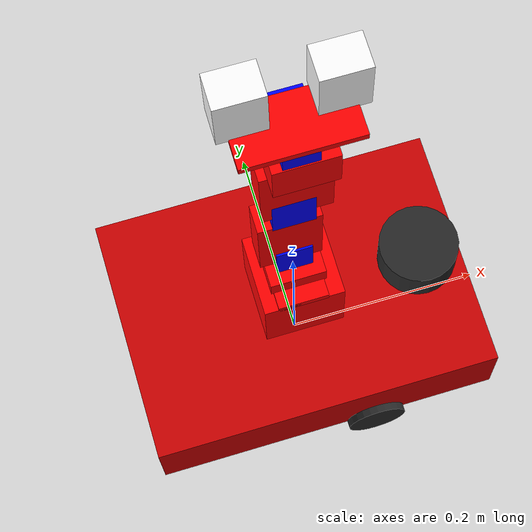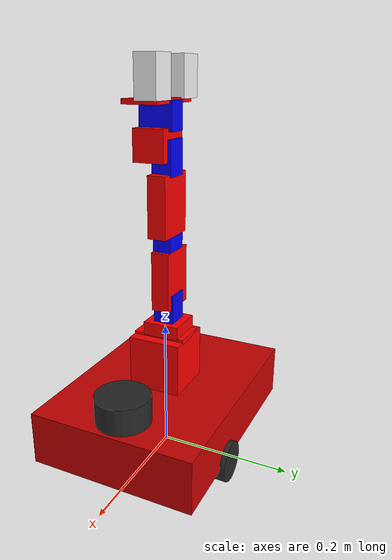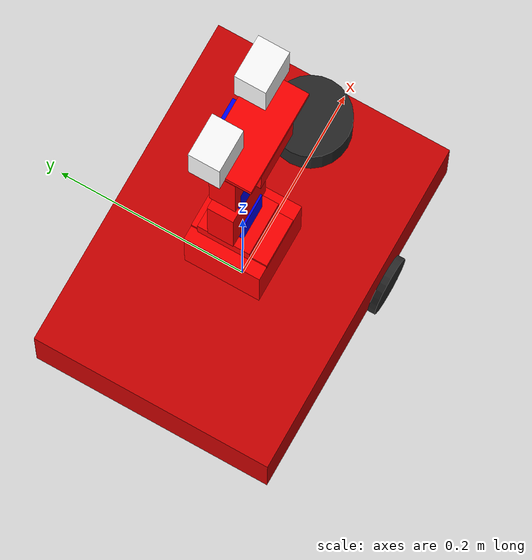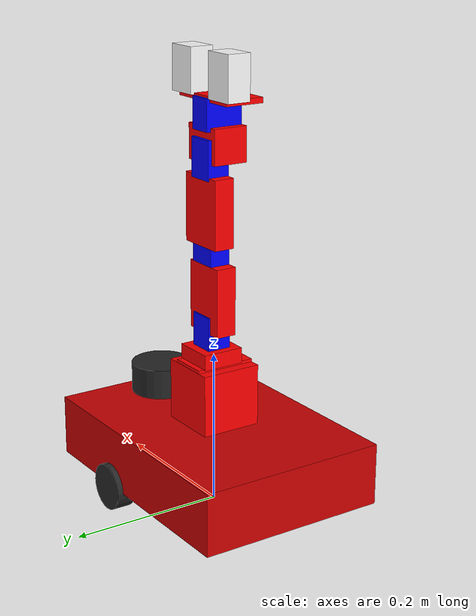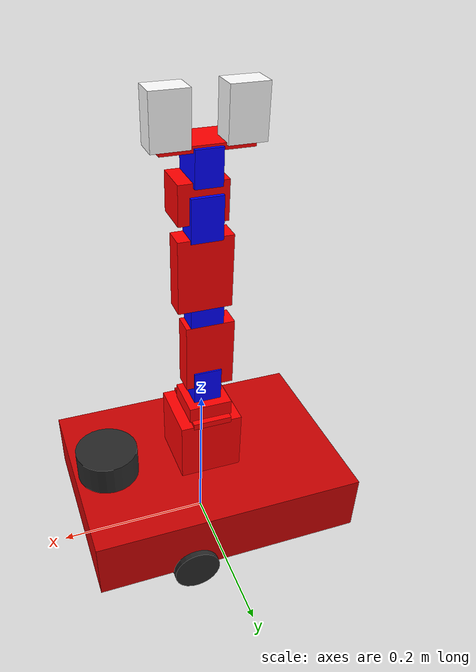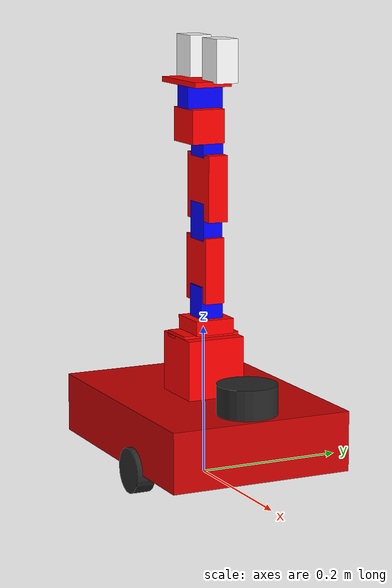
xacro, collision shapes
<?xml version="1.0"?>
<robot xmlns:xacro="http://www.ros.org/wiki/xacro" name="armando">

  <!-- Argomenti che verranno passati dal launch file -->
  <xacro:arg name="namespace" default=""/>
  <xacro:arg name="yaml_file" default=""/>

  <!-- Proprietà locali -->

  <xacro:property name="namespace_value" value="$(arg namespace)"/>
  <xacro:property name="prefix" value="$(arg namespace)_"/>
  <xacro:property name="yaml_path" value="$(arg yaml_file)"/>

  <material name="red">
    <color rgba="1 0 0 1"/>
  </material>

  <material name="blue">
    <color rgba="0 0 1 1"/>
  </material>

  <material name="green">
    <color rgba="0 1 0 1"/>
  </material>

  <!-- MATERIALS -->
  <material name="red_base"><color rgba="0.8 0.0 0.0 1.0"/></material>
  <material name="black"><color rgba="0.15 0.15 0.15 1.0"/></material>
  <material name="grey"><color rgba="0.5 0.5 0.5 1.0"/></material>

  <!-- PROPERTIES -->
  <xacro:property name="M_PI_2" value="1.570796327" />

  <xacro:property name="base_length" value="0.35" />
  <xacro:property name="base_width" value="0.25" />
  <xacro:property name="base_height" value="0.08" />
  <xacro:property name="base_mass" value="5.0" />

  <xacro:property name="wheel_radius" value="0.03" />
  <xacro:property name="wheel_width" value="0.025" />
  <xacro:property name="wheel_mass" value="5.0" />
  <xacro:property name="wheel_separation" value="0.24" />

  <xacro:property name="caster_radius" value="0.015" />
  <xacro:property name="caster_mass" value="0.3" />

  <xacro:property name="ground_clearance" value="0.000" />
  <xacro:property name="wheel_mount_z" value="${-base_height/2}" />
  <xacro:property name="base_elevation" value="${wheel_radius - wheel_mount_z + ground_clearance}" />

  <!-- BASE FOOTPRINT (CON PREFIX) -->
  <link name="${prefix}mobile_base_footprint"/>

  <joint name="${prefix}mobile_base_footprint_joint" type="fixed">
    <parent link="${prefix}mobile_base_footprint"/>
    <child link="${prefix}mobile_base_link"/>
    <origin xyz="0 0 ${base_elevation}" rpy="0 0 0"/>
  </joint>

  <!-- BASE LINK (CON PREFIX) -->
  <link name="${prefix}mobile_base_link">
    <visual>
      <geometry><box size="${base_length} ${base_width} ${base_height}"/></geometry>
      <material name="red_base"/>
      <origin xyz="0 0 0" rpy="0 0 0"/>
    </visual>

    <collision>
      <geometry><box size="${base_length} ${base_width} ${base_height}"/></geometry>
      <origin xyz="0 0 0" rpy="0 0 0"/>
    </collision>

    <inertial>
      <origin xyz="0 0 0" rpy="0 0 0"/>
      <mass value="${base_mass}"/>
      <inertia ixx="${(1/12) * base_mass * (base_width*base_width + base_height*base_height)}" ixy="0.0" ixz="0.0"
               iyy="${(1/12) * base_mass * (base_length*base_length + base_height*base_height)}" iyz="0.0"
               izz="${(1/12) * base_mass * (base_length*base_length + base_width*base_width)}"/>
    </inertial>
  </link>

  <!-- WHEEL MACRO -->
  <xacro:macro name="wheel_link_joint" params="side origin_x y_sign">
    <link name="${prefix}${side}_wheel_link">
      <visual>
        <geometry><cylinder radius="${wheel_radius}" length="${wheel_width}"/></geometry>
        <material name="black"/>
        <origin xyz="0 0 0" rpy="${pi/2} 0 0"/>
      </visual>
      <collision>
        <geometry><cylinder radius="${wheel_radius}" length="${wheel_width}"/></geometry>
        <origin xyz="0 0 0" rpy="${pi/2} 0 0"/>
      </collision>
      <inertial>
        <origin xyz="0 0 0" rpy="0 0 0"/>
        <mass value="${wheel_mass}"/>
        <inertia ixx="${(1/12) * wheel_mass * (3*wheel_radius*wheel_radius + wheel_width*wheel_width)}" ixy="0.0" ixz="0.0"
                 iyy="${(1/12) * wheel_mass * (3*wheel_radius*wheel_radius + wheel_width*wheel_width)}" iyz="0.0"
                 izz="${(1/2) * wheel_mass * wheel_radius * wheel_radius}"/>
      </inertial>
    </link>
    <joint name="${prefix}${side}_wheel_joint" type="continuous">
      <parent link="${prefix}mobile_base_link"/>
      <child link="${prefix}${side}_wheel_link"/>
      <origin xyz="${origin_x} ${y_sign * wheel_separation/2} ${wheel_mount_z}" rpy="0 0 0"/>
      <axis xyz="0 1 0"/>
      <dynamics damping="0.01" friction="0.01"/>
    </joint>
  </xacro:macro>

  <!-- WHEELS -->
  <xacro:wheel_link_joint side="left" origin_x="0.05" y_sign="1"/>
  <xacro:wheel_link_joint side="right" origin_x="0.05" y_sign="-1"/>

  <!-- CASTER -->
  <link name="${prefix}caster_link">
    <visual><geometry><sphere radius="${caster_radius}"/></geometry><material name="black"/></visual>
    <collision>
      <geometry><sphere radius="${caster_radius}"/></geometry>
    </collision>
    <inertial>
      <mass value="${caster_mass}"/>
      <inertia ixx="${(2/5) * caster_mass * caster_radius*caster_radius}" ixy="0.0" ixz="0.0"
               iyy="${(2/5) * caster_mass * caster_radius*caster_radius}" iyz="0.0"
               izz="${(2/5) * caster_mass * caster_radius*caster_radius}"/>
    </inertial>
  </link>

  <joint name="${prefix}caster_joint" type="fixed">
    <parent link="${prefix}mobile_base_link"/>
    <child link="${prefix}caster_link"/>
    <origin xyz="${-base_length/2 + 0.05} 0 ${caster_radius - base_elevation}" rpy="0 0 0"/>
  </joint>

  <!-- ARM MOUNT POINT -->
  <link name="${prefix}mount_point"/>

  <joint name="${prefix}mount_joint" type="fixed">
    <parent link="${prefix}mobile_base_link"/>
    <child link="${prefix}mount_point"/>
    <origin xyz="0 0 ${base_height/2}" rpy="0 0 0"/>
  </joint>

  <!-- ARM BASE LINK (DEL BRACCIO ROBOTICO) -->
  <link name="${prefix}base_link">
    <visual>
      <geometry>
        <mesh filename="file://$(find final_project)/meshes/armando/base_link.stl" scale="0.001 0.001 0.001"/>
      </geometry>
      <origin rpy="0 0 0" xyz="0 0 0.03"/>
      <material name="red"/>
    </visual>
    <collision>
      <geometry>
        <box size = "0.08 0.08 0.1"/>
      </geometry>
      <origin rpy="0 0 0" xyz="0 0 0.03"/>
    </collision>
    <inertial>
      <mass value="0.1"/>
      <inertia ixx="1.06682889e-04" ixy="0.0" ixz="0.0" iyy="9.92165844e-05" iyz="0.0" izz="1.26939175e-04"/>
    </inertial>
  </link>

  <joint name="${prefix}base_1_2" type="fixed">
    <parent link="${prefix}base_link"/>
    <child link="${prefix}base_turn"/>
    <origin xyz="-0.0011 -0.011 0.08"/>
  </joint>

  <link name="${prefix}base_turn">
    <visual>
      <geometry>
        <mesh filename="file://$(find final_project)/meshes/armando/base_turn.stl" scale="0.001 0.001 0.001"/>
      </geometry>
      <origin rpy="0 0 0" xyz="0 0 0"/>
      <material name="red"/>
    </visual>
    <collision>
      <geometry>
          <box size = "0.05 0.08 0.008"/>
        </geometry>
      <origin rpy="0 0 0" xyz="0 +0.011 0"/>
    </collision>
    <inertial>
      <mass value="0.1"/>
      <inertia ixx="1.35223008e-05" ixy="0.0" ixz="0.0" iyy="8.13814925e-06" iyz="0.0" izz="2.14903814e-05"/>
    </inertial>
  </link>

  <joint name="${prefix}j0" type="revolute">
    <parent link="${prefix}base_turn"/>
    <child link="${prefix}base_turn_rot"/>
    <origin xyz="-0.0 0.0155 0.013" rpy = "0 0 -1.57"/>
    <axis xyz="0 0 1" />
    <limit effort="300" velocity="0.1" lower="-2.57" upper="2.57"/>
  </joint>

  <link name="${prefix}base_turn_rot">
    <visual>
      <geometry>
        <mesh filename="file://$(find final_project)/meshes/armando/base_turn_table_rot.stl" scale="0.001 0.001 0.001"/>
      </geometry>
      <material name="red"/>
    </visual>
    <collision>
      <geometry>
          <box size = "0.055 0.055 0.02"/>
        </geometry>
      <origin rpy="0 0 0" xyz="0 0 0"/>
    </collision>

    <inertial>
      <mass value="0.1"/>
      <inertia ixx="0.001" ixy="0.0" ixz="0.0" iyy="0.001" iyz="0.0" izz="0.001"/>
    </inertial>
  </link>

  <joint name="${prefix}base_turn_rot_dyn2" type="fixed">
    <parent link="${prefix}base_turn_rot"/>
    <child link="${prefix}dyn2"/>
    <origin xyz="0 0 0.0385" rpy="0 1.57 1.57 "/>
  </joint>

  <link name="${prefix}dyn2">
    <visual>
      <geometry>
        <mesh filename="file://$(find final_project)/meshes/armando/dyn.stl" scale="0.01 0.01 0.01"/>
      </geometry>
      <material name="blue"/>
      <origin rpy="0 0 0" xyz="0 0 0"/>
    </visual>
    <collision>
      <geometry>
          <box size = "0.05 0.031 0.035"/>
        </geometry>
      <origin rpy="0 0 0" xyz="0.01 0 0"/>
    </collision>
     <inertial>
      <mass value="0.1"/>
      <inertia ixx="6.90013881e-05" ixy="0.0" ixz="0.0" iyy="1.24554875e-04" iyz="0.0" izz="1.04295793e-04"/>
    </inertial>
  </link>

  <joint name="${prefix}j1" type="revolute">
    <parent link="${prefix}dyn2"/>
    <child link="${prefix}dyn2_r"/>
    <origin xyz="0 0 0.0" rpy="0 0 0"/>
    <axis xyz="0 0 1" />
    <limit effort="300" velocity="0.1" lower="-3.14" upper="3.14"/>
  </joint>

  <link name="${prefix}dyn2_r">

  </link>

  <joint name="${prefix}dyn2_f4" type="fixed">
    <parent link="${prefix}dyn2_r"/>
    <child link="${prefix}f4"/>
    <origin xyz="-0.047 0.0 -0.003" rpy="0 1.57 1.57"/>
  </joint>

  <link name="${prefix}f4">
    <visual>
      <geometry>
        <mesh filename="file://$(find final_project)/meshes/armando/f4_n_f3.stl" scale="0.001 0.001 0.001"/>
      </geometry>
      <origin rpy="0 0 0" xyz="0 0 0"/>
      <material name="red"/>
    </visual>
    <collision>
      <geometry>
          <box size = "0.06 0.088 0.027"/>
        </geometry>
      <origin rpy="0 0 0" xyz="0 -0.01 0"/>
    </collision>
     <inertial>
      <mass value="0.1"/>
      <inertia ixx="6.90013881e-05" ixy="0.0" ixz="0.0" iyy="1.24554875e-04" iyz="0.0" izz="1.04295793e-04"/>
    </inertial>
  </link>

  <joint name="${prefix}d4_dyn3" type="fixed">
    <parent link="${prefix}f4"/>
    <child link="${prefix}dyn3"/>
    <origin xyz="-0.004 0.0645 0 " rpy="-1.57 3.14 1.57"/>
  </joint>

  <link name="${prefix}dyn3">
    <visual>
      <geometry>
        <mesh filename="file://$(find final_project)/meshes/armando/dyn.stl" scale="0.01 0.01 0.01"/>
      </geometry>
      <material name="blue"/>
      <origin rpy="0 0 0" xyz="0 0 0"/>
    </visual>
    <collision>
      <geometry>
          <box size = "0.05 0.027 0.04"/>
        </geometry>
      <origin rpy="0 0 0" xyz="0.01 0 0"/>
    </collision>
     <inertial>
      <mass value="0.1"/>
      <inertia ixx="6.90013881e-05" ixy="0.0" ixz="0.0" iyy="1.24554875e-04" iyz="0.0" izz="1.04295793e-04"/>
    </inertial>
  </link>

  <joint name="${prefix}j2" type="revolute">
    <parent link="${prefix}dyn3"/>
    <child link="${prefix}dyn3_r"/>
    <origin xyz="0 0 0.0" rpy="0 0 0"/>
    <axis xyz="0 0 1" />
    <limit effort="300" velocity="0.1" lower="-3.14" upper="3.14"/>
  </joint>

 <link name="${prefix}dyn3_r">

  </link>

  <joint name="${prefix}dyn3_f5" type="fixed">
    <parent link="${prefix}dyn3_r"/>
    <child link="${prefix}f5"/>
    <origin xyz="-0.046 -0.0 -0.002" rpy="1.57 1.57 3.1415 "/>
  </joint>

  <link name="${prefix}f5">
    <visual>
      <geometry>
        <mesh filename="file://$(find final_project)/meshes/armando/f4_n_f3.stl" scale="0.001 0.001 0.001"/>
      </geometry>
      <origin rpy="0 0 0" xyz="0 0 0"/>
      <material name="red"/>
    </visual>
    <collision>
      <geometry>
          <box size = "0.065 0.088 0.027"/>
        </geometry>
      <origin rpy="0 0 0" xyz="-0.005 -0.01 0"/>
    </collision>

    <inertial>
      <mass value="0.1"/>
  <inertia ixx="0.001" ixy="0.0" ixz="0.0" iyy="0.001" iyz="0.0" izz="0.001"/>    </inertial>
  </link>

  <joint name="${prefix}f5_dyn4" type="fixed">
    <parent link="${prefix}f5"/>
    <child link="${prefix}dyn4"/>
    <origin xyz="-0.004 0.065 -0.0" rpy="-1.57 3.1415 1.57 "/>
  </joint>

  <link name="${prefix}dyn4">
    <visual>
      <geometry>
        <mesh filename="file://$(find final_project)/meshes/armando/dyn.stl" scale="0.01 0.01 0.01"/>
      </geometry>
      <material name="blue"/>
      <origin rpy="0 0 0" xyz="0 0 0"/>
    </visual>
    <collision>
      <geometry>
          <box size = "0.05 0.029 0.037"/>
        </geometry>
      <origin rpy="0 0 0" xyz="0.01 0 0"/>
    </collision>

    <inertial>
      <mass value="0.1"/>
      <inertia ixx="6.90013881e-05" ixy="0.0" ixz="0.0" iyy="1.24554875e-04" iyz="0.0" izz="1.04295793e-04"/>
    </inertial>
  </link>

  <joint name="${prefix}j3" type="revolute">
    <parent link="${prefix}dyn4"/>
    <child link="${prefix}dyn4_r"/>
    <origin xyz="0 0 0.0" rpy="0 0 0"/>
    <axis xyz="0 0 1" />
    <limit effort="300" velocity="0.1" lower="-3.14" upper="3.14"/>
  </joint>

  <link name="${prefix}dyn4_r">

  </link>

  <joint name="${prefix}f5_wrist" type="fixed">
    <parent link="${prefix}dyn4_r"/>
    <child link="${prefix}wrist"/>
    <origin xyz="-0.017 -0.013 0.003" rpy="1.57 1.57 -1.57"/>
  </joint>

  <link name="${prefix}wrist">
    <visual>
      <geometry>
        <mesh filename="file://$(find final_project)/meshes/armando/wrist.stl" scale="0.001 0.001 0.001"/>
      </geometry>
      <origin rpy="0 0 0" xyz="0 0 0"/>
      <material name="red"/>
    </visual>
    <collision>
      <geometry>
        <box size = "0.057 0.046 0.045"/>
      </geometry>
      <origin rpy="0 0 0" xyz="0 0 -0.01"/>
    </collision>

     <inertial>
      <mass value="0.1"/>
      <inertia ixx="6.90013881e-05" ixy="0.0" ixz="0.0" iyy="1.24554875e-04" iyz="0.0" izz="1.04295793e-04"/>
    </inertial>
  </link>

  <joint name="${prefix}wrist_dyn5" type="fixed">
    <parent link="${prefix}wrist"/>
    <child link="${prefix}dyn5"/>
    <origin xyz="0.0038 -0.013 0.0275" rpy="0 0 1.57"/>
  </joint>

    <link name="${prefix}dyn5">
    <visual>
      <geometry>
        <mesh filename="file://$(find final_project)/meshes/armando/dyn.stl" scale="0.01 0.01 0.01"/>
      </geometry>
      <material name="blue"/>
      <origin rpy="0 0 0" xyz="0 0 0"/>
    </visual>
    <collision>
      <geometry>
          <box size = "0.05 0.031 0.04"/>
        </geometry>
      <origin rpy="0 0 0" xyz="0.01 0 0"/>
    </collision>

    <inertial>
      <mass value="0.1"/>
      <inertia ixx="6.90013881e-05" ixy="0.0" ixz="0.0" iyy="1.24554875e-04" iyz="0.0" izz="1.04295793e-04"/>
    </inertial>
  </link>

  <joint name="${prefix}dyn5_dyn5_r" type="fixed">
    <parent link="${prefix}dyn5"/>
    <child link="${prefix}dyn5_r"/>
    <origin xyz="0 0 0.0" rpy="0 0 0"/>
    <axis xyz="0 0 1" />
    <limit effort="300" velocity="0.1" lower="-3.14" upper="3.14"/>
  </joint>

  <link name="${prefix}dyn5_r">

  </link>

  <joint name="${prefix}wrist_rotate_dyn5" type="fixed">
    <parent link="${prefix}dyn5_r"/>
    <child link="${prefix}crawer_base"/>
    <origin xyz="0.015 0 0.019" rpy="0 0 1.57"/>
  </joint>

  <link name="${prefix}crawer_base">
    <visual>
      <geometry>
        <mesh filename="file://$(find final_project)/meshes/armando/the_crawer_base.stl" scale="0.001 0.001 0.001"/>
      </geometry>
      <origin rpy="0 0 0" xyz="0 0 0"/>
      <material name="red"/>
    </visual>
    <collision>
      <geometry>
          <box size = "0.102 0.052 0.007"/>
        </geometry>
      <origin rpy="0 0 0" xyz="0 0 0"/>
    </collision>

    <inertial>
      <mass value="0.1"/>
      <inertia ixx="6.90013881e-05" ixy="0.0" ixz="0.0" iyy="1.24554875e-04" iyz="0.0" izz="1.04295793e-04"/>
    </inertial>
  </link>

  <joint name="${prefix}gripper_left_joint" type="prismatic">
    <parent link="${prefix}crawer_base"/>
    <child link="${prefix}crawer_left"/>
    <origin xyz="-0.03 0.015 0.01" rpy="0 -1.57 0"/>
    <axis xyz="0 0 1"/>
    <limit effort="20" velocity="0.05" lower="0.0" upper="0.03"/>
  </joint>

  <link name="${prefix}crawer_left">
    <visual>
      <geometry>
        <mesh filename="file://$(find final_project)/meshes/armando/the_crawer.stl" scale="0.001 0.001 0.001"/>
      </geometry>
      <origin rpy="0 0 0" xyz="0 0 0"/>
      <material name="white">
        <color rgba="1 1 1 1"/>
      </material>
    </visual>
    <collision>
      <geometry>
          <box size = "0.057 0.031 0.042"/>
        </geometry>
      <origin rpy="0 0 0" xyz="0.02 0 0.01"/>
    </collision>

    <inertial>
      <mass value="0.1"/>
      <inertia ixx="6.90013881e-05" ixy="0.0" ixz="0.0" iyy="1.24554875e-04" iyz="0.0" izz="1.04295793e-04"/>
    </inertial>
  </link>

  <joint name="${prefix}gripper_right_joint" type="prismatic">
    <parent link="${prefix}crawer_base"/>
    <child link="${prefix}crawer_right"/>
    <origin xyz="0.03 0.015 0.01" rpy="3.1415 -1.57 0"/>
    <axis xyz="0 0 1"/>
    <limit effort="20" velocity="0.05" lower="0.0" upper="0.03"/>
  </joint>

  <link name="${prefix}crawer_right">
    <visual>
      <geometry>
        <mesh filename="file://$(find final_project)/meshes/armando/the_crawer.stl" scale="0.001 0.001 0.001"/>
      </geometry>
      <origin rpy="0 0 0" xyz="0 0 0"/>
      <material name="white">
        <color rgba="1 1 1 1"/>
      </material>
    </visual>
    <collision>
      <geometry>
          <box size = "0.057 0.031 0.042"/>
        </geometry>
      <origin rpy="0 0 0" xyz="0.02 0 0.01"/>
    </collision>

    <inertial>
      <mass value="0.1"/>
      <inertia ixx="6.90013881e-05" ixy="0.0" ixz="0.0" iyy="1.24554875e-04" iyz="0.0" izz="1.04295793e-04"/>
    </inertial>
  </link>

  <!-- Joint che collega il braccio robotico alla base mobile -->
  <joint name="armando_fixed_mount" type="fixed">
    <parent link="${prefix}mount_point"/>
    <child link="${prefix}base_link"/>
    <origin xyz="0 0 0" rpy="0 0 0"/>
  </joint>

  <!-- GAZEBO PLUGINS -->

  <gazebo>
    <plugin filename="gz_ros2_control-system" name="gz_ros2_control::GazeboSimROS2ControlPlugin">
      <parameters>$(arg yaml_file)</parameters>
      <ros>
      <namespace>$(arg namespace)</namespace>
      </ros>
      <control_period>0.01</control_period>
    </plugin>
  </gazebo>

  <!-- Colori Gazebo -->
  <gazebo reference="${prefix}base_link">
    <material>Gazebo/Red</material>
    <mu1>0.2</mu1>
    <mu2>0.2</mu2>
  </gazebo>

  <gazebo reference="${prefix}base_turn">
    <material>Gazebo/Red</material>
  </gazebo>

  <gazebo reference="${prefix}base_turn_rot">
    <material>Gazebo/Red</material>
  </gazebo>

  <gazebo reference="${prefix}dyn2">
    <material>Gazebo/Blue</material>
  </gazebo>

  <gazebo reference="${prefix}dyn3">
    <material>Gazebo/Blue</material>
  </gazebo>

  <gazebo reference="${prefix}dyn4">
    <material>Gazebo/Blue</material>
  </gazebo>

  <gazebo reference="${prefix}dyn5">
    <material>Gazebo/Blue</material>
  </gazebo>

  <gazebo reference="${prefix}f4">
    <material>Gazebo/Red</material>
  </gazebo>

  <gazebo reference="${prefix}f5">
    <material>Gazebo/Red</material>
  </gazebo>

  <gazebo reference="${prefix}wrist">
    <material>Gazebo/Red</material>
  </gazebo>

  <gazebo reference="${prefix}crawer_base">
    <material>Gazebo/Red</material>
  </gazebo>

  <gazebo reference="${prefix}crawer_left">
    <material>Gazebo/White</material>
    <mu1>1.0</mu1>
    <mu2>1.0</mu2>
    <kp>1000000.0</kp>
    <kd>1.0</kd>
  </gazebo>

  <gazebo reference="${prefix}crawer_right">
    <material>Gazebo/White</material>
    <mu1>1.0</mu1>
    <mu2>1.0</mu2>
    <kp>1000000.0</kp>
    <kd>1.0</kd>
  </gazebo>

  <!-- GAZEBO MATERIALS FOR MOBILE BASE -->
  <gazebo reference="${prefix}mobile_base_link">
    <material>Gazebo/Red</material>
  </gazebo>

  <gazebo reference="${prefix}left_wheel_link">
    <material>Gazebo/Black</material>
    <mu1>100.0</mu1>
    <mu2>100.0</mu2>
    <kp>10000000.0</kp>
    <kd>1.0</kd>
    <minDepth>0.001</minDepth>
  </gazebo>
  <gazebo reference="${prefix}right_wheel_link">
    <material>Gazebo/Black</material>
    <mu1>100.0</mu1>
    <mu2>100.0</mu2>
    <kp>10000000.0</kp>
    <kd>1.0</kd>
    <minDepth>0.001</minDepth>
  </gazebo>

  <gazebo reference="${prefix}caster_link">
    <material>Gazebo/Black</material>
    <mu1>0.0</mu1>
    <mu2>0.0</mu2>
  </gazebo>

  <!-- DIFFDRIVE PLUGIN -->
  <gazebo>
    <plugin name="ignition::gazebo::systems::DiffDrive" filename="libignition-gazebo-diff-drive-system.so">
      <left_joint>${prefix}left_wheel_joint</left_joint>
      <right_joint>${prefix}right_wheel_joint</right_joint>
      <wheel_separation>0.24</wheel_separation>
      <wheel_radius>0.03</wheel_radius>
      <max_linear_acceleration>2.0</max_linear_acceleration>
      <max_angular_acceleration>3.0</max_angular_acceleration>
      <min_linear_acceleration>-2.0</min_linear_acceleration>
      <min_angular_acceleration>-3.0</min_angular_acceleration>
      <topic>/$(arg namespace)/cmd_vel</topic>
      <odom_topic>/$(arg namespace)/odom</odom_topic>
      <tf_topic>/$(arg namespace)/tf</tf_topic>
      <frame_id>/arm/odom</frame_id>
      <child_frame_id>${prefix}mobile_base_footprint</child_frame_id>
      <odom_publish_frequency>50.0</odom_publish_frequency>
      <publish_odom>true</publish_odom>
      <publish_odom_tf>true</publish_odom_tf>
      <publish_wheel_tf>false</publish_wheel_tf>
    </plugin>
  </gazebo>

  <!-- ros2_control -->
  <ros2_control name="GazeboSimSystem" type="system">
    <hardware>
      <plugin>gz_ros2_control/GazeboSimSystem</plugin>
    </hardware>

    <joint name="${prefix}j0">
      <command_interface name="position">
        <param name="min">-2.57</param>
        <param name="max">2.57</param>
      </command_interface>
      <state_interface name="position"/>
      <state_interface name="velocity"/>
    </joint>

    <joint name="${prefix}j1">
      <command_interface name="position">
        <param name="min">-3.14</param>
        <param name="max">3.14</param>
      </command_interface>
      <state_interface name="position"/>
      <state_interface name="velocity"/>
    </joint>

    <joint name="${prefix}j2">
      <command_interface name="position">
        <param name="min">-3.14</param>
        <param name="max">3.14</param>
      </command_interface>
      <state_interface name="position"/>
      <state_interface name="velocity"/>
    </joint>

    <joint name="${prefix}j3">
      <command_interface name="position">
        <param name="min">-3.14</param>
        <param name="max">3.14</param>
      </command_interface>
      <state_interface name="position"/>
      <state_interface name="velocity"/>
    </joint>

    <joint name="${prefix}gripper_left_joint">
      <command_interface name="position">
        <param name="min">0.0</param>
        <param name="max">0.03</param>
      </command_interface>
      <state_interface name="position"/>
      <state_interface name="velocity"/>
    </joint>

    <joint name="${prefix}gripper_right_joint">
      <command_interface name="position">
        <param name="min">0.0</param>
        <param name="max">0.03</param>
      </command_interface>
      <state_interface name="position"/>
      <state_interface name="velocity"/>
    </joint>

    <joint name="${prefix}left_wheel_joint">
      <state_interface name="position"/>
      <state_interface name="velocity"/>
    </joint>

    <joint name="${prefix}right_wheel_joint">
      <state_interface name="position"/>
      <state_interface name="velocity"/>
    </joint>

  </ros2_control>

  <!-- LIDAR LINK -->
  <link name="${prefix}lidar_link">
      <visual>
          <geometry>
              <cylinder radius="0.04" length="0.04"/>
          </geometry>
          <material name="black"/>
          <origin xyz="0.13 0 0" rpy="0 0 0"/>
      </visual>
      <collision>
          <geometry>
              <cylinder radius="0.04" length="0.04"/>
          </geometry>
          <origin xyz="0.13 0 0" rpy="0 0 0"/>
      </collision>
      <inertial>
          <mass value="0.1"/>
          <inertia ixx="0.0001" ixy="0.0" ixz="0.0"
                  iyy="0.0001" iyz="0.0"
                  izz="0.0001"/>
      </inertial>
  </link>

  <joint name="${prefix}lidar_joint" type="fixed">
      <parent link="${prefix}mobile_base_link"/>
      <child link="${prefix}lidar_link"/>
      <origin xyz="0.0 0.0 ${base_height/2 + 0.02}" rpy="0 0 0"/>
  </joint>

  <!-- LIDAR GAZEBO PLUGIN -->
  <gazebo reference="${prefix}lidar_link">
      <sensor name="lidar" type="gpu_lidar">
          <topic>$(arg namespace)/scan</topic>
          <update_rate>10</update_rate>
          <lidar>
              <scan>
                  <horizontal>
                      <samples>360</samples>
                      <resolution>1.0</resolution>
                      <min_angle>-3.14159</min_angle>
                      <max_angle>3.14159</max_angle>
                  </horizontal>
              </scan>
              <range>
                  <min>0.12</min>
                  <max>10.0</max>
                  <resolution>0.015</resolution>
              </range>
              <noise>
                  <type>gaussian</type>
                  <mean>0.0</mean>
                  <stddev>0.01</stddev>
              </noise>
          </lidar>
          <always_on>1</always_on>
          <visualize>true</visualize>
      </sensor>
      <material>Gazebo/Black</material>
  </gazebo>

</robot>
